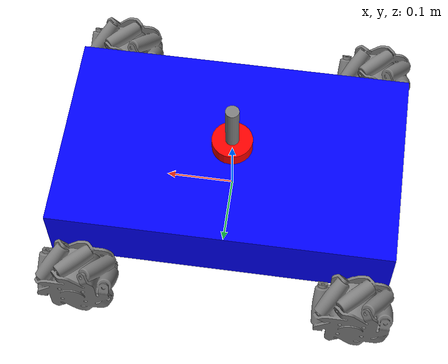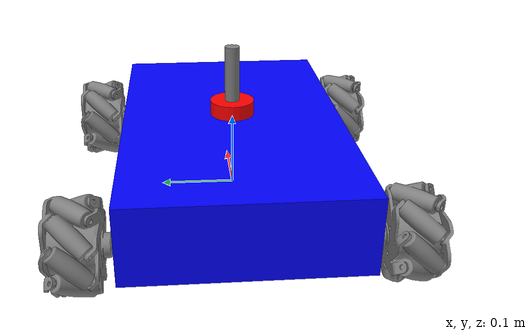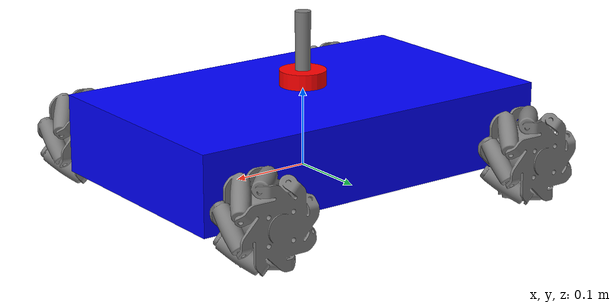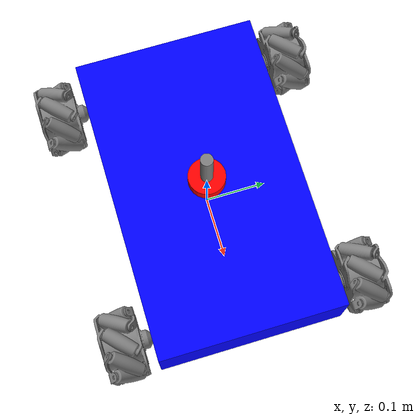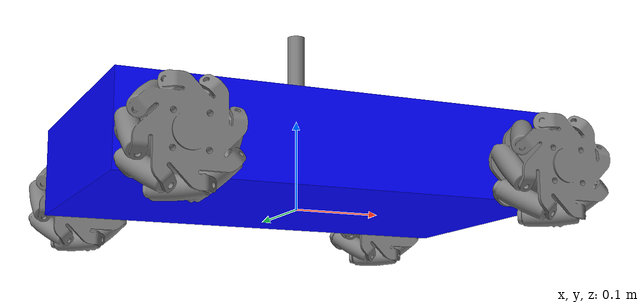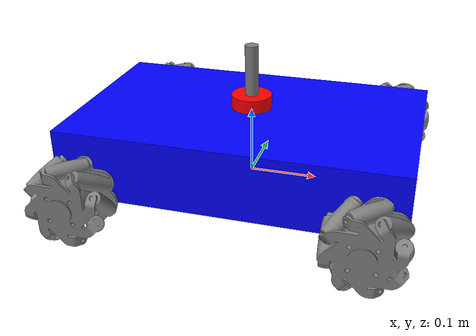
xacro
<?xml version="1.0"?>
<robot xmlns:xacro="http://www.ros.org/wiki/xacro" name = "thaara_bot">

    <material name="blue">
        <color rgba="0 0 1 1"/>
    </material>
    <material name="black">
        <color rgba="0 0 0 1"/>
    </material>
    <material name="red">
        <color rgba="1 0 0 1"/>
    </material>
    <material name="gray">
        <color rgba="0.5 0.5 0.5 1"/>
    </material>

    <link name="world"/>

    <link name="base_link">
        <visual>
            <geometry>
                <box size="0.5 0.3 0.1"/>
            </geometry>
            <origin xyz="0.0 0.0 0.05"/>
            <material name="blue"/>
        </visual>
    </link>

    <link name="wheel_fl">
        <visual>
                <geometry>
                    <mesh filename="package://robot_description/meshes/Mecanum_wheels_assembly_left_v4.stl" scale="0.002 0.002 0.002"/>
                </geometry>
            <origin xyz="0 0.076 0.0" rpy="1.5708 .0 -1.5708"/>
            <material name="gray"/>
        </visual>
        <collision>
            <geometry>
                    <cylinder radius="0.0" length="0.0"/>
                </geometry>
            <origin xyz="0 0.076 0.0" rpy="1.5708 .0 -1.5708"/>
        </collision>
    </link>

    <link name="wheel_fr">
        <visual>
            <geometry>
                <mesh filename="package://robot_description/meshes/Mecanum_wheels_assembly_left_v4.stl" scale="0.002 0.002 0.002"/>
            </geometry>
            <origin xyz="0 -0.076 0.0" rpy="1.5708 0.0 1.5708"/>
            <material name="gray"/>
        </visual>
    </link>

    <link name="wheel_bl">
        <visual>
            <geometry>
                <mesh filename="package://robot_description/meshes/Mecanum_wheels_assembly_left_v4.stl" scale="0.002 0.002 0.002"/>
            </geometry>
            <origin xyz="0 0.076 0.0" rpy="1.5708 0.0 -1.5708"/>
            <material name="gray"/>
        </visual>
    </link>

    <link name="wheel_br">
        <visual>
            <geometry>
                <mesh filename="package://robot_description/meshes/Mecanum_wheels_assembly_left_v4.stl" scale="0.002 0.002 0.002"/>
            </geometry>
            <origin xyz="0 -0.076 0.0" rpy="1.5708 0.0 1.5708"/>
            <material name="gray"/>
        </visual>
    </link>

    <link name="lidar_stand">
        <visual>
            <geometry>
                <cylinder radius="0.01" length="0.1"/>
            </geometry>
            <origin xyz="0.0 0.0 0.1" rpy="0.0 0.0 0.0"/>
            <material name="gray"/>
        </visual>
    </link>

    <link name="lidar">
        <visual>
            <geometry>
                <cylinder radius="0.03" length="0.02"/>
            </geometry>
            <origin xyz="0.0 0.0 0.015" rpy="0.0 0.0 0.0"/>
            <material name="red"/>
        </visual>
    </link>

    <joint name="joint_wheel_fl" type="continuous">
        <origin xyz="0.2 0.15 0.025" rpy="0.0 0.0 0.0"/>
        <parent link="base_link"/>
        <child link="wheel_fl"/>
        <axis xyz="0.0 1.0 0.0"/>
    </joint>

    <joint name="joint_wheel_fr" type="continuous">
        <origin xyz="0.2 -0.15 0.025" rpy="0.0 0.0 0.0"/>
        <parent link="base_link"/>
        <child link="wheel_fr"/>
        <axis xyz="0.0 1.0 0.0"/>
    </joint>

    <joint name="joint_wheel_bl" type="continuous">
        <origin xyz="-0.2 0.15 0.025" rpy="0.0 0.0 0.0"/>
        <parent link="base_link"/>
        <child link="wheel_bl"/>
        <axis xyz="0.0 1.0 0.0"/>
    </joint>

    <joint name="joint_wheel_br" type="continuous">
        <origin xyz="-0.2 -0.15 0.025" rpy="0.0 0.0 0.0"/>
        <parent link="base_link"/>
        <child link="wheel_br"/>
        <axis xyz="0.0 1.0 0.0"/>
    </joint>

    <joint name="joint_lidar_stand" type="fixed">
        <origin xyz="0.0 0.0 0.05" rpy="0.0 0.0 0.0"/>
        <parent link="base_link"/>
        <child link="lidar_stand"/>
    </joint>

    <joint name="joint_lidar" type="fixed">
        <origin xyz="0.0 0.0 0.05" rpy="0.0 0.0 0.0"/>
        <parent link="lidar_stand"/>
        <child link="lidar"/>
    </joint>

    <joint name="world_to_base" type="fixed">
        <origin xyz="0.0 0.0 0.0" rpy="0.0 0.0 0.0"/>
        <parent link="world"/>
        <child link="base_link"/>
        <axis xyz="0.0 0.0 0.0"/>
    </joint>

</robot>
